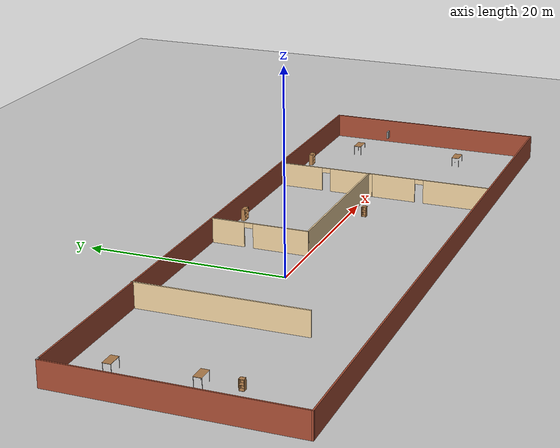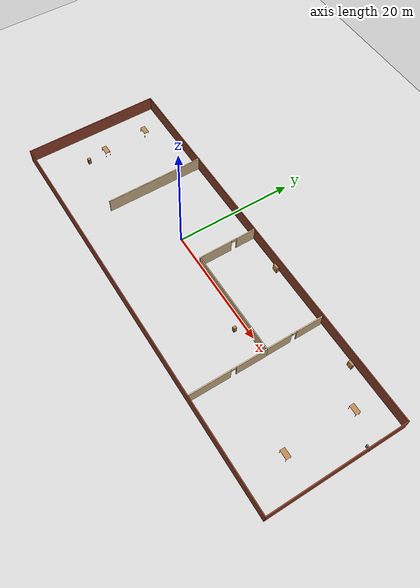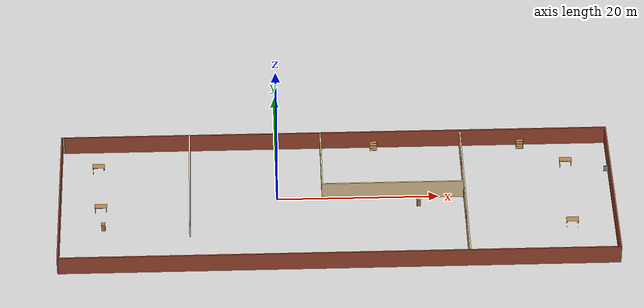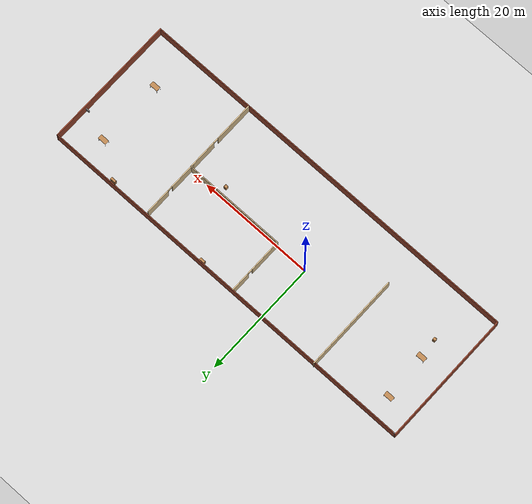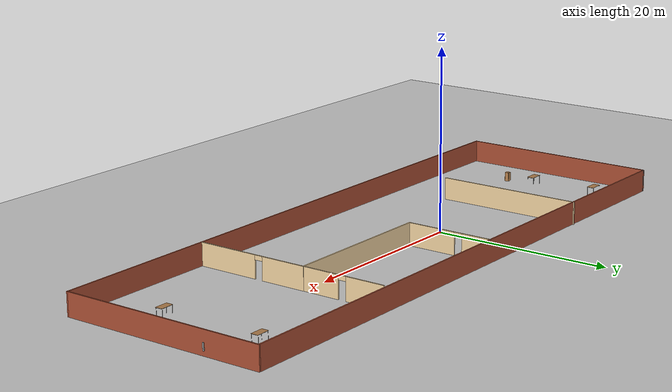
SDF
<sdf version="1.7">
 <world name="default">
  <light name="sun" type="directional">
   <pose>0 0 10 0 -0 0</pose>
   <diffuse>0.8 0.8 0.8 1</diffuse>
   <specular>0.2 0.2 0.2 1</specular>
   <attenuation>
    <range>1000</range>
    <constant>0.9</constant>
    <linear>0.01</linear>
    <quadratic>0.001</quadratic>
   </attenuation>
   <direction>-0.5 0.1 -0.9</direction>
   <spot><inner_angle>0</inner_angle><outer_angle>0</outer_angle><falloff>0</falloff></spot>
  </light>
  <model name="ground_plane">
   <static>1</static>
   <link name="link">
    <collision name="collision">
     <geometry><plane><normal>0 0 1</normal><size>100 100</size></plane></geometry>
     <surface>
      <contact><collide_bitmask>65535</collide_bitmask></contact>
      <friction><ode><mu>100</mu><mu2>50</mu2></ode></friction>
     </surface>
    </collision>
    <visual name="visual">
     <cast_shadows>0</cast_shadows>
     <geometry><plane><normal>0 0 1</normal><size>100 100</size></plane></geometry>
     <material>
      <script><uri>file://media/materials/scripts/gazebo.material</uri><name>Gazebo/Grey</name></script>
     </material>
    </visual>
   </link>
  </model>
  <gravity>0 0 -9.8</gravity>
  <magnetic_field>6e-06 2.3e-05 -4.2e-05</magnetic_field>
  <atmosphere type="adiabatic"/>
  <physics type="ode">
   <max_step_size>0.001</max_step_size>
   <real_time_factor>1</real_time_factor>
   <real_time_update_rate>1000</real_time_update_rate>
  </physics>
  <scene><ambient>0.4 0.4 0.4 1</ambient><background>0.7 0.7 0.7 1</background><shadows>1</shadows></scene>
  <spherical_coordinates>
   <surface_model>EARTH_WGS84</surface_model>
   <latitude_deg>0</latitude_deg>
   <longitude_deg>0</longitude_deg>
   <elevation>0</elevation>
   <heading_deg>0</heading_deg>
  </spherical_coordinates>
  <model name="model">
   <pose>7.34531 -1.52201 0 0 -0 0</pose>
   <link name="Wall_0">
    <collision name="Wall_0_Collision">
     <geometry><box><size>68.25 0.15 2.5</size></box></geometry>
     <pose>0 0 1.25 0 -0 0</pose>
    </collision>
    <visual name="Wall_0_Visual">
     <pose>0 0 1.25 0 -0 0</pose>
     <geometry><box><size>68.25 0.15 2.5</size></box></geometry>
     <material>
      <script><uri>file://media/materials/scripts/gazebo.material</uri><name>Gazebo/Bricks</name></script>
      <ambient>1 1 1 1</ambient>
     </material>
     <meta><layer>0</layer></meta>
    </visual>
    <pose>0.125 11.3695 0 0 -0 0</pose>
   </link>
   <link name="Wall_1">
    <collision name="Wall_1_Collision">
     <geometry><box><size>23 0.15 2.5</size></box></geometry>
     <pose>0 0 1.25 0 -0 0</pose>
    </collision>
    <visual name="Wall_1_Visual">
     <pose>0 0 1.25 0 -0 0</pose>
     <geometry><box><size>23 0.15 2.5</size></box></geometry>
     <material>
      <script><uri>file://media/materials/scripts/gazebo.material</uri><name>Gazebo/Bricks</name></script>
      <ambient>1 1 1 1</ambient>
     </material>
     <meta><layer>0</layer></meta>
    </visual>
    <pose>34.175 -0.05549 0 0 -0 -1.5708</pose>
   </link>
   <link name="Wall_14">
    <collision name="Wall_14_Collision">
     <geometry><box><size>17.75 0.15 2.5</size></box></geometry>
     <pose>0 0 1.25 0 -0 0</pose>
    </collision>
    <visual name="Wall_14_Visual">
     <pose>0 0 1.25 0 -0 0</pose>
     <geometry><box><size>17.75 0.15 2.5</size></box></geometry>
     <material>
      <script><uri>file://media/materials/scripts/gazebo.material</uri><name>Gazebo/Grey</name></script>
      <ambient>0.921569 0.807843 0.615686 1</ambient>
     </material>
     <meta><layer>0</layer></meta>
    </visual>
    <pose>7.05908 1.46402 0 0 -0 0</pose>
   </link>
   <link name="Wall_15">
    <pose>15.8591 -4.96098 0 0 -0 -1.5708</pose>
    <visual name="Wall_15_Visual_0">
     <pose>-3.92716 0 1.25 0 -0 0</pose>
     <geometry><box><size>5.14567 0.15 2.5</size></box></geometry>
     <material>
      <script><uri>file://media/materials/scripts/gazebo.material</uri><name>Gazebo/Grey</name></script>
      <ambient>0.921569 0.807843 0.615686 1</ambient>
     </material>
     <meta><layer>0</layer></meta>
    </visual>
    <collision name="Wall_15_Collision_0">
     <geometry><box><size>5.14567 0.15 2.5</size></box></geometry>
     <pose>-3.92716 0 1.25 0 -0 0</pose>
    </collision>
    <visual name="Wall_15_Visual_1">
     <pose>3.02284 0 1.25 0 -0 0</pose>
     <geometry><box><size>6.95432 0.15 2.5</size></box></geometry>
     <material>
      <script><uri>file://media/materials/scripts/gazebo.material</uri><name>Gazebo/Grey</name></script>
      <ambient>0.921569 0.807843 0.615686 1</ambient>
     </material>
     <meta><layer>0</layer></meta>
    </visual>
    <collision name="Wall_15_Collision_1">
     <geometry><box><size>6.95432 0.15 2.5</size></box></geometry>
     <pose>3.02284 0 1.25 0 -0 0</pose>
    </collision>
    <visual name="Wall_15_Visual_2">
     <pose>-0.904325 0 2.25 0 -0 0</pose>
     <geometry><box><size>0.9 0.15 0.5</size></box></geometry>
     <material>
      <script><uri>file://media/materials/scripts/gazebo.material</uri><name>Gazebo/Grey</name></script>
      <ambient>0.921569 0.807843 0.615686 1</ambient>
     </material>
     <meta><layer>0</layer></meta>
    </visual>
    <collision name="Wall_15_Collision_2">
     <geometry><box><size>0.9 0.15 0.5</size></box></geometry>
     <pose>-0.904325 0 2.25 0 -0 0</pose>
    </collision>
   </link>
   <link name="Wall_2">
    <collision name="Wall_2_Collision">
     <geometry><box><size>68.5 0.15 2.5</size></box></geometry>
     <pose>0 0 1.25 0 -0 0</pose>
    </collision>
    <visual name="Wall_2_Visual">
     <pose>0 0 1.25 0 -0 0</pose>
     <geometry><box><size>68.5 0.15 2.5</size></box></geometry>
     <material>
      <script><uri>file://media/materials/scripts/gazebo.material</uri><name>Gazebo/Bricks</name></script>
      <ambient>1 1 1 1</ambient>
     </material>
     <meta><layer>0</layer></meta>
    </visual>
    <pose>0 -11.4805 0 0 -0 3.14159</pose>
   </link>
   <link name="Wall_20">
    <pose>15.8297 6.03071 0 0 -0 1.5708</pose>
    <visual name="Wall_20_Visual_0">
     <pose>-2.66704 0 1.25 0 -0 0</pose>
     <geometry><box><size>4.66592 0.15 2.5</size></box></geometry>
     <material>
      <script><uri>file://media/materials/scripts/gazebo.material</uri><name>Gazebo/Grey</name></script>
      <ambient>0.921569 0.807843 0.615686 1</ambient>
     </material>
     <meta><layer>0</layer></meta>
    </visual>
    <collision name="Wall_20_Collision_0">
     <geometry><box><size>4.66592 0.15 2.5</size></box></geometry>
     <pose>-2.66704 0 1.25 0 -0 0</pose>
    </collision>
    <visual name="Wall_20_Visual_1">
     <pose>2.78296 0 1.25 0 -0 0</pose>
     <geometry><box><size>4.43408 0.15 2.5</size></box></geometry>
     <material>
      <script><uri>file://media/materials/scripts/gazebo.material</uri><name>Gazebo/Grey</name></script>
      <ambient>0.921569 0.807843 0.615686 1</ambient>
     </material>
     <meta><layer>0</layer></meta>
    </visual>
    <collision name="Wall_20_Collision_1">
     <geometry><box><size>4.43408 0.15 2.5</size></box></geometry>
     <pose>2.78296 0 1.25 0 -0 0</pose>
    </collision>
    <visual name="Wall_20_Visual_2">
     <pose>0.115923 0 2.25 0 -0 0</pose>
     <geometry><box><size>0.9 0.15 0.5</size></box></geometry>
     <material>
      <script><uri>file://media/materials/scripts/gazebo.material</uri><name>Gazebo/Grey</name></script>
      <ambient>0.921569 0.807843 0.615686 1</ambient>
     </material>
     <meta><layer>0</layer></meta>
    </visual>
    <collision name="Wall_20_Collision_2">
     <geometry><box><size>0.9 0.15 0.5</size></box></geometry>
     <pose>0.115923 0 2.25 0 -0 0</pose>
    </collision>
   </link>
   <link name="Wall_3">
    <collision name="Wall_3_Collision">
     <geometry><box><size>23 0.15 2.5</size></box></geometry>
     <pose>0 0 1.25 0 -0 0</pose>
    </collision>
    <visual name="Wall_3_Visual">
     <pose>0 0 1.25 0 -0 0</pose>
     <geometry><box><size>23 0.15 2.5</size></box></geometry>
     <material>
      <script><uri>file://media/materials/scripts/gazebo.material</uri><name>Gazebo/Bricks</name></script>
      <ambient>1 1 1 1</ambient>
     </material>
     <meta><layer>0</layer></meta>
    </visual>
    <pose>-34.175 -0.05549 0 0 -0 1.5708</pose>
   </link>
   <link name="Wall_4">
    <collision name="Wall_4_Collision">
     <geometry><box><size>0.4 0.15 2.5</size></box></geometry>
     <pose>0 0 1.25 0 -0 0</pose>
    </collision>
    <visual name="Wall_4_Visual">
     <pose>0 0 1.25 0 -0 0</pose>
     <geometry><box><size>0.4 0.15 2.5</size></box></geometry>
     <material>
      <script><uri>file://media/materials/scripts/gazebo.material</uri><name>Gazebo/Grey</name></script>
      <ambient>1 1 1 1</ambient>
     </material>
     <meta><layer>0</layer></meta>
    </visual>
    <pose>-34.05 11.3695 0 0 -0 0</pose>
   </link>
   <link name="Wall_6">
    <collision name="Wall_6_Collision">
     <geometry><box><size>16.75 0.15 2.5</size></box></geometry>
     <pose>0 0 1.25 0 -0 0</pose>
    </collision>
    <visual name="Wall_6_Visual">
     <pose>0 0 1.25 0 -0 0</pose>
     <geometry><box><size>16.75 0.15 2.5</size></box></geometry>
     <material>
      <script><uri>file://media/materials/scripts/gazebo.material</uri><name>Gazebo/Grey</name></script>
      <ambient>0.921569 0.807843 0.615686 1</ambient>
     </material>
     <meta><layer>0</layer></meta>
    </visual>
    <pose>-18.1659 3.18049 0 0 -0 -1.5708</pose>
   </link>
   <link name="Wall_8">
    <pose>-1.74091 6.38902 0 0 -0 -1.5708</pose>
    <visual name="Wall_8_Visual_0">
     <pose>-3.29213 0 1.25 0 -0 0</pose>
     <geometry><box><size>3.41574 0.15 2.5</size></box></geometry>
     <material>
      <script><uri>file://media/materials/scripts/gazebo.material</uri><name>Gazebo/Grey</name></script>
      <ambient>0.921569 0.807843 0.615686 1</ambient>
     </material>
     <meta><layer>0</layer></meta>
    </visual>
    <collision name="Wall_8_Collision_0">
     <geometry><box><size>3.41574 0.15 2.5</size></box></geometry>
     <pose>-3.29213 0 1.25 0 -0 0</pose>
    </collision>
    <visual name="Wall_8_Visual_1">
     <pose>2.15787 0 1.25 0 -0 0</pose>
     <geometry><box><size>5.68426 0.15 2.5</size></box></geometry>
     <material>
      <script><uri>file://media/materials/scripts/gazebo.material</uri><name>Gazebo/Grey</name></script>
      <ambient>0.921569 0.807843 0.615686 1</ambient>
     </material>
     <meta><layer>0</layer></meta>
    </visual>
    <collision name="Wall_8_Collision_1">
     <geometry><box><size>5.68426 0.15 2.5</size></box></geometry>
     <pose>2.15787 0 1.25 0 -0 0</pose>
    </collision>
    <visual name="Wall_8_Visual_2">
     <pose>-1.13426 0 2.25 0 -0 0</pose>
     <geometry><box><size>0.9 0.15 0.5</size></box></geometry>
     <material>
      <script><uri>file://media/materials/scripts/gazebo.material</uri><name>Gazebo/Grey</name></script>
      <ambient>0.921569 0.807843 0.615686 1</ambient>
     </material>
     <meta><layer>0</layer></meta>
    </visual>
    <collision name="Wall_8_Collision_2">
     <geometry><box><size>0.9 0.15 0.5</size></box></geometry>
     <pose>-1.13426 0 2.25 0 -0 0</pose>
    </collision>
   </link>
   <link name="Window_1">
    <collision name="Window_1_Collision">
     <geometry><box><size>0.8 0.17 0.8</size></box></geometry>
     <pose>0 0 0.4 0 -0 0</pose>
    </collision>
    <visual name="Window_1_Visual">
     <pose>0 0 0.4 0 -0 0</pose>
     <geometry><box><size>0.8 0.17 0.8</size></box></geometry>
     <material>
      <script><uri>file://media/materials/scripts/gazebo.material</uri><name>Gazebo/Grey</name></script>
     </material>
    </visual>
    <pose>33.9219 5.17612 0.5 0 -0 0</pose>
   </link>
   <static>1</static>
  </model>
  <model name="table">
   <static>1</static>
   <link name="link">
    <collision name="surface">
     <pose>0 0 1 0 -0 0</pose>
     <geometry><box><size>1.5 0.8 0.03</size></box></geometry>
     <surface><friction><ode><mu>0.6</mu><mu2>0.6</mu2></ode></friction></surface>
    </collision>
    <visual name="visual1">
     <pose>0 0 1 0 -0 0</pose>
     <geometry><box><size>1.5 0.8 0.03</size></box></geometry>
     <material>
      <script><uri>file://media/materials/scripts/gazebo.material</uri><name>Gazebo/Wood</name></script>
     </material>
    </visual>
    <collision name="front_left_leg">
     <pose>0.68 0.38 0.5 0 -0 0</pose>
     <geometry><cylinder><radius>0.02</radius><length>1</length></cylinder></geometry>
    </collision>
    <visual name="front_left_leg">
     <pose>0.68 0.38 0.5 0 -0 0</pose>
     <geometry><cylinder><radius>0.02</radius><length>1</length></cylinder></geometry>
     <material>
      <script><uri>file://media/materials/scripts/gazebo.material</uri><name>Gazebo/Grey</name></script>
     </material>
    </visual>
    <collision name="front_right_leg">
     <pose>0.68 -0.38 0.5 0 -0 0</pose>
     <geometry><cylinder><radius>0.02</radius><length>1</length></cylinder></geometry>
    </collision>
    <visual name="front_right_leg">
     <pose>0.68 -0.38 0.5 0 -0 0</pose>
     <geometry><cylinder><radius>0.02</radius><length>1</length></cylinder></geometry>
     <material>
      <script><uri>file://media/materials/scripts/gazebo.material</uri><name>Gazebo/Grey</name></script>
     </material>
    </visual>
    <collision name="back_right_leg">
     <pose>-0.68 -0.38 0.5 0 -0 0</pose>
     <geometry><cylinder><radius>0.02</radius><length>1</length></cylinder></geometry>
    </collision>
    <visual name="back_right_leg">
     <pose>-0.68 -0.38 0.5 0 -0 0</pose>
     <geometry><cylinder><radius>0.02</radius><length>1</length></cylinder></geometry>
     <material>
      <script><uri>file://media/materials/scripts/gazebo.material</uri><name>Gazebo/Grey</name></script>
     </material>
    </visual>
    <collision name="back_left_leg">
     <pose>-0.68 0.38 0.5 0 -0 0</pose>
     <geometry><cylinder><radius>0.02</radius><length>1</length></cylinder></geometry>
    </collision>
    <visual name="back_left_leg">
     <pose>-0.68 0.38 0.5 0 -0 0</pose>
     <geometry><cylinder><radius>0.02</radius><length>1</length></cylinder></geometry>
     <material>
      <script><uri>file://media/materials/scripts/gazebo.material</uri><name>Gazebo/Grey</name></script>
     </material>
    </visual>
   </link>
   <pose>-22.2207 5.97345 0 0 -0 0</pose>
  </model>
  <model name="table_0">
   <static>1</static>
   <link name="link">
    <collision name="surface">
     <pose>0 0 1 0 -0 0</pose>
     <geometry><box><size>1.5 0.8 0.03</size></box></geometry>
     <surface><friction><ode><mu>0.6</mu><mu2>0.6</mu2></ode></friction></surface>
    </collision>
    <visual name="visual1">
     <pose>0 0 1 0 -0 0</pose>
     <geometry><box><size>1.5 0.8 0.03</size></box></geometry>
     <material>
      <script><uri>file://media/materials/scripts/gazebo.material</uri><name>Gazebo/Wood</name></script>
     </material>
    </visual>
    <collision name="front_left_leg">
     <pose>0.68 0.38 0.5 0 -0 0</pose>
     <geometry><cylinder><radius>0.02</radius><length>1</length></cylinder></geometry>
    </collision>
    <visual name="front_left_leg">
     <pose>0.68 0.38 0.5 0 -0 0</pose>
     <geometry><cylinder><radius>0.02</radius><length>1</length></cylinder></geometry>
     <material>
      <script><uri>file://media/materials/scripts/gazebo.material</uri><name>Gazebo/Grey</name></script>
     </material>
    </visual>
    <collision name="front_right_leg">
     <pose>0.68 -0.38 0.5 0 -0 0</pose>
     <geometry><cylinder><radius>0.02</radius><length>1</length></cylinder></geometry>
    </collision>
    <visual name="front_right_leg">
     <pose>0.68 -0.38 0.5 0 -0 0</pose>
     <geometry><cylinder><radius>0.02</radius><length>1</length></cylinder></geometry>
     <material>
      <script><uri>file://media/materials/scripts/gazebo.material</uri><name>Gazebo/Grey</name></script>
     </material>
    </visual>
    <collision name="back_right_leg">
     <pose>-0.68 -0.38 0.5 0 -0 0</pose>
     <geometry><cylinder><radius>0.02</radius><length>1</length></cylinder></geometry>
    </collision>
    <visual name="back_right_leg">
     <pose>-0.68 -0.38 0.5 0 -0 0</pose>
     <geometry><cylinder><radius>0.02</radius><length>1</length></cylinder></geometry>
     <material>
      <script><uri>file://media/materials/scripts/gazebo.material</uri><name>Gazebo/Grey</name></script>
     </material>
    </visual>
    <collision name="back_left_leg">
     <pose>-0.68 0.38 0.5 0 -0 0</pose>
     <geometry><cylinder><radius>0.02</radius><length>1</length></cylinder></geometry>
    </collision>
    <visual name="back_left_leg">
     <pose>-0.68 0.38 0.5 0 -0 0</pose>
     <geometry><cylinder><radius>0.02</radius><length>1</length></cylinder></geometry>
     <material>
      <script><uri>file://media/materials/scripts/gazebo.material</uri><name>Gazebo/Grey</name></script>
     </material>
    </visual>
   </link>
   <pose>-21.8013 -1.74204 0 0 -0 0</pose>
  </model>
  <model name="table_1">
   <static>1</static>
   <link name="link">
    <collision name="surface">
     <pose>0 0 1 0 -0 0</pose>
     <geometry><box><size>1.5 0.8 0.03</size></box></geometry>
     <surface><friction><ode><mu>0.6</mu><mu2>0.6</mu2></ode></friction></surface>
    </collision>
    <visual name="visual1">
     <pose>0 0 1 0 -0 0</pose>
     <geometry><box><size>1.5 0.8 0.03</size></box></geometry>
     <material>
      <script><uri>file://media/materials/scripts/gazebo.material</uri><name>Gazebo/Wood</name></script>
     </material>
    </visual>
    <collision name="front_left_leg">
     <pose>0.68 0.38 0.5 0 -0 0</pose>
     <geometry><cylinder><radius>0.02</radius><length>1</length></cylinder></geometry>
    </collision>
    <visual name="front_left_leg">
     <pose>0.68 0.38 0.5 0 -0 0</pose>
     <geometry><cylinder><radius>0.02</radius><length>1</length></cylinder></geometry>
     <material>
      <script><uri>file://media/materials/scripts/gazebo.material</uri><name>Gazebo/Grey</name></script>
     </material>
    </visual>
    <collision name="front_right_leg">
     <pose>0.68 -0.38 0.5 0 -0 0</pose>
     <geometry><cylinder><radius>0.02</radius><length>1</length></cylinder></geometry>
    </collision>
    <visual name="front_right_leg">
     <pose>0.68 -0.38 0.5 0 -0 0</pose>
     <geometry><cylinder><radius>0.02</radius><length>1</length></cylinder></geometry>
     <material>
      <script><uri>file://media/materials/scripts/gazebo.material</uri><name>Gazebo/Grey</name></script>
     </material>
    </visual>
    <collision name="back_right_leg">
     <pose>-0.68 -0.38 0.5 0 -0 0</pose>
     <geometry><cylinder><radius>0.02</radius><length>1</length></cylinder></geometry>
    </collision>
    <visual name="back_right_leg">
     <pose>-0.68 -0.38 0.5 0 -0 0</pose>
     <geometry><cylinder><radius>0.02</radius><length>1</length></cylinder></geometry>
     <material>
      <script><uri>file://media/materials/scripts/gazebo.material</uri><name>Gazebo/Grey</name></script>
     </material>
    </visual>
    <collision name="back_left_leg">
     <pose>-0.68 0.38 0.5 0 -0 0</pose>
     <geometry><cylinder><radius>0.02</radius><length>1</length></cylinder></geometry>
    </collision>
    <visual name="back_left_leg">
     <pose>-0.68 0.38 0.5 0 -0 0</pose>
     <geometry><cylinder><radius>0.02</radius><length>1</length></cylinder></geometry>
     <material>
      <script><uri>file://media/materials/scripts/gazebo.material</uri><name>Gazebo/Grey</name></script>
     </material>
    </visual>
   </link>
   <pose>36.2172 5.45251 0 0 -0 0</pose>
  </model>
  <model name="table_2">
   <static>1</static>
   <link name="link">
    <collision name="surface">
     <pose>0 0 1 0 -0 0</pose>
     <geometry><box><size>1.5 0.8 0.03</size></box></geometry>
     <surface><friction><ode><mu>0.6</mu><mu2>0.6</mu2></ode></friction></surface>
    </collision>
    <visual name="visual1">
     <pose>0 0 1 0 -0 0</pose>
     <geometry><box><size>1.5 0.8 0.03</size></box></geometry>
     <material>
      <script><uri>file://media/materials/scripts/gazebo.material</uri><name>Gazebo/Wood</name></script>
     </material>
    </visual>
    <collision name="front_left_leg">
     <pose>0.68 0.38 0.5 0 -0 0</pose>
     <geometry><cylinder><radius>0.02</radius><length>1</length></cylinder></geometry>
    </collision>
    <visual name="front_left_leg">
     <pose>0.68 0.38 0.5 0 -0 0</pose>
     <geometry><cylinder><radius>0.02</radius><length>1</length></cylinder></geometry>
     <material>
      <script><uri>file://media/materials/scripts/gazebo.material</uri><name>Gazebo/Grey</name></script>
     </material>
    </visual>
    <collision name="front_right_leg">
     <pose>0.68 -0.38 0.5 0 -0 0</pose>
     <geometry><cylinder><radius>0.02</radius><length>1</length></cylinder></geometry>
    </collision>
    <visual name="front_right_leg">
     <pose>0.68 -0.38 0.5 0 -0 0</pose>
     <geometry><cylinder><radius>0.02</radius><length>1</length></cylinder></geometry>
     <material>
      <script><uri>file://media/materials/scripts/gazebo.material</uri><name>Gazebo/Grey</name></script>
     </material>
    </visual>
    <collision name="back_right_leg">
     <pose>-0.68 -0.38 0.5 0 -0 0</pose>
     <geometry><cylinder><radius>0.02</radius><length>1</length></cylinder></geometry>
    </collision>
    <visual name="back_right_leg">
     <pose>-0.68 -0.38 0.5 0 -0 0</pose>
     <geometry><cylinder><radius>0.02</radius><length>1</length></cylinder></geometry>
     <material>
      <script><uri>file://media/materials/scripts/gazebo.material</uri><name>Gazebo/Grey</name></script>
     </material>
    </visual>
    <collision name="back_left_leg">
     <pose>-0.68 0.38 0.5 0 -0 0</pose>
     <geometry><cylinder><radius>0.02</radius><length>1</length></cylinder></geometry>
    </collision>
    <visual name="back_left_leg">
     <pose>-0.68 0.38 0.5 0 -0 0</pose>
     <geometry><cylinder><radius>0.02</radius><length>1</length></cylinder></geometry>
     <material>
      <script><uri>file://media/materials/scripts/gazebo.material</uri><name>Gazebo/Grey</name></script>
     </material>
    </visual>
   </link>
   <pose>36.2003 -6.01355 0 0 -0 0</pose>
  </model>
  <model name="bookshelf">
   <static>1</static>
   <link name="link">
    <inertial><mass>1</mass></inertial>
    <collision name="back">
     <pose>0 0.005 0.6 0 -0 0</pose>
     <geometry><box><size>0.9 0.01 1.2</size></box></geometry>
    </collision>
    <visual name="visual1">
     <pose>0 0.005 0.6 0 -0 0</pose>
     <geometry><box><size>0.9 0.01 1.2</size></box></geometry>
     <material>
      <script><uri>file://media/materials/scripts/gazebo.material</uri><name>Gazebo/Wood</name></script>
     </material>
    </visual>
    <collision name="left_side">
     <pose>0.45 -0.195 0.6 0 -0 0</pose>
     <geometry><box><size>0.02 0.4 1.2</size></box></geometry>
    </collision>
    <visual name="visual2">
     <pose>0.45 -0.195 0.6 0 -0 0</pose>
     <geometry><box><size>0.02 0.4 1.2</size></box></geometry>
     <material>
      <script><uri>file://media/materials/scripts/gazebo.material</uri><name>Gazebo/Wood</name></script>
     </material>
    </visual>
    <collision name="right_side">
     <pose>-0.45 -0.195 0.6 0 -0 0</pose>
     <geometry><box><size>0.02 0.4 1.2</size></box></geometry>
    </collision>
    <visual name="visual3">
     <pose>-0.45 -0.195 0.6 0 -0 0</pose>
     <geometry><box><size>0.02 0.4 1.2</size></box></geometry>
     <material>
      <script><uri>file://media/materials/scripts/gazebo.material</uri><name>Gazebo/Wood</name></script>
     </material>
    </visual>
    <collision name="bottom">
     <pose>0 -0.195 0.03 0 -0 0</pose>
     <geometry><box><size>0.88 0.4 0.06</size></box></geometry>
    </collision>
    <visual name="visual4">
     <pose>0 -0.195 0.03 0 -0 0</pose>
     <geometry><box><size>0.88 0.4 0.06</size></box></geometry>
     <material>
      <script><uri>file://media/materials/scripts/gazebo.material</uri><name>Gazebo/Wood</name></script>
     </material>
    </visual>
    <collision name="top">
     <pose>0 -0.195 1.19 0 -0 0</pose>
     <geometry><box><size>0.88 0.4 0.02</size></box></geometry>
    </collision>
    <visual name="visual5">
     <pose>0 -0.195 1.19 0 -0 0</pose>
     <geometry><box><size>0.88 0.4 0.02</size></box></geometry>
     <material>
      <script><uri>file://media/materials/scripts/gazebo.material</uri><name>Gazebo/Wood</name></script>
     </material>
    </visual>
    <collision name="low_shelf">
     <pose>0 -0.195 0.43 0 -0 0</pose>
     <geometry><box><size>0.88 0.4 0.02</size></box></geometry>
    </collision>
    <visual name="visual6">
     <pose>0 -0.195 0.43 0 -0 0</pose>
     <geometry><box><size>0.88 0.4 0.02</size></box></geometry>
     <material>
      <script><uri>file://media/materials/scripts/gazebo.material</uri><name>Gazebo/Wood</name></script>
     </material>
    </visual>
    <collision name="high_shelf">
     <pose>0 -0.195 0.8 0 -0 0</pose>
     <geometry><box><size>0.88 0.4 0.02</size></box></geometry>
    </collision>
    <visual name="visual7">
     <pose>0 -0.195 0.8 0 -0 0</pose>
     <geometry><box><size>0.88 0.4 0.02</size></box></geometry>
     <material>
      <script><uri>file://media/materials/scripts/gazebo.material</uri><name>Gazebo/Wood</name></script>
     </material>
    </visual>
   </link>
   <pose>30.7128 9.31954 0 0 -0 0</pose>
  </model>
  <model name="bookshelf_0">
   <static>1</static>
   <link name="link">
    <inertial><mass>1</mass></inertial>
    <collision name="back">
     <pose>0 0.005 0.6 0 -0 0</pose>
     <geometry><box><size>0.9 0.01 1.2</size></box></geometry>
    </collision>
    <visual name="visual1">
     <pose>0 0.005 0.6 0 -0 0</pose>
     <geometry><box><size>0.9 0.01 1.2</size></box></geometry>
     <material>
      <script><uri>file://media/materials/scripts/gazebo.material</uri><name>Gazebo/Wood</name></script>
     </material>
    </visual>
    <collision name="left_side">
     <pose>0.45 -0.195 0.6 0 -0 0</pose>
     <geometry><box><size>0.02 0.4 1.2</size></box></geometry>
    </collision>
    <visual name="visual2">
     <pose>0.45 -0.195 0.6 0 -0 0</pose>
     <geometry><box><size>0.02 0.4 1.2</size></box></geometry>
     <material>
      <script><uri>file://media/materials/scripts/gazebo.material</uri><name>Gazebo/Wood</name></script>
     </material>
    </visual>
    <collision name="right_side">
     <pose>-0.45 -0.195 0.6 0 -0 0</pose>
     <geometry><box><size>0.02 0.4 1.2</size></box></geometry>
    </collision>
    <visual name="visual3">
     <pose>-0.45 -0.195 0.6 0 -0 0</pose>
     <geometry><box><size>0.02 0.4 1.2</size></box></geometry>
     <material>
      <script><uri>file://media/materials/scripts/gazebo.material</uri><name>Gazebo/Wood</name></script>
     </material>
    </visual>
    <collision name="bottom">
     <pose>0 -0.195 0.03 0 -0 0</pose>
     <geometry><box><size>0.88 0.4 0.06</size></box></geometry>
    </collision>
    <visual name="visual4">
     <pose>0 -0.195 0.03 0 -0 0</pose>
     <geometry><box><size>0.88 0.4 0.06</size></box></geometry>
     <material>
      <script><uri>file://media/materials/scripts/gazebo.material</uri><name>Gazebo/Wood</name></script>
     </material>
    </visual>
    <collision name="top">
     <pose>0 -0.195 1.19 0 -0 0</pose>
     <geometry><box><size>0.88 0.4 0.02</size></box></geometry>
    </collision>
    <visual name="visual5">
     <pose>0 -0.195 1.19 0 -0 0</pose>
     <geometry><box><size>0.88 0.4 0.02</size></box></geometry>
     <material>
      <script><uri>file://media/materials/scripts/gazebo.material</uri><name>Gazebo/Wood</name></script>
     </material>
    </visual>
    <collision name="low_shelf">
     <pose>0 -0.195 0.43 0 -0 0</pose>
     <geometry><box><size>0.88 0.4 0.02</size></box></geometry>
    </collision>
    <visual name="visual6">
     <pose>0 -0.195 0.43 0 -0 0</pose>
     <geometry><box><size>0.88 0.4 0.02</size></box></geometry>
     <material>
      <script><uri>file://media/materials/scripts/gazebo.material</uri><name>Gazebo/Wood</name></script>
     </material>
    </visual>
    <collision name="high_shelf">
     <pose>0 -0.195 0.8 0 -0 0</pose>
     <geometry><box><size>0.88 0.4 0.02</size></box></geometry>
    </collision>
    <visual name="visual7">
     <pose>0 -0.195 0.8 0 -0 0</pose>
     <geometry><box><size>0.88 0.4 0.02</size></box></geometry>
     <material>
      <script><uri>file://media/materials/scripts/gazebo.material</uri><name>Gazebo/Wood</name></script>
     </material>
    </visual>
   </link>
   <pose>12.2763 9.5106 0 0 -0 0</pose>
  </model>
  <model name="cabinet">
   <static>1</static>
   <link name="cabinet_bottom_plate">
    <inertial>
     <pose>0 0 -1 0 -0 0</pose>
     <inertia><ixx>2.05</ixx><ixy>0</ixy><ixz>0</ixz><iyy>2.05</iyy><iyz>0</iyz><izz>2.05</izz></inertia>
     <mass>25</mass>
    </inertial>
    <collision name="cabinet_bottom_plate_geom">
     <pose>0 0 0.01 0 -0 0</pose>
     <geometry><box><size>0.45 0.45 0.02</size></box></geometry>
    </collision>
    <visual name="cabinet_bottom_plate_geom_visual">
     <pose>0 0 0.01 0 -0 0</pose>
     <geometry><box><size>0.45 0.45 0.02</size></box></geometry>
     <material>
      <script><uri>file://media/materials/scripts/gazebo.material</uri><name>Gazebo/Wood</name></script>
     </material>
    </visual>
    <collision name="cabinet_bottom_plate_geom_cabinet_back_plate">
     <pose>0.235 0 0.51 0 -0 0</pose>
     <geometry><box><size>0.02 0.45 1.02</size></box></geometry>
    </collision>
    <visual name="cabinet_bottom_plate_geom_cabinet_back_plate_visual">
     <pose>0.235 0 0.51 0 -0 0</pose>
     <geometry><box><size>0.02 0.45 1.02</size></box></geometry>
     <material>
      <script><uri>file://media/materials/scripts/gazebo.material</uri><name>Gazebo/Wood</name></script>
     </material>
    </visual>
    <collision name="cabinet_bottom_plate_geom_cabinet_left_plate">
     <pose>0 0.235 0.51 0 -0 0</pose>
     <geometry><box><size>0.45 0.02 1.02</size></box></geometry>
    </collision>
    <visual name="cabinet_bottom_plate_geom_cabinet_left_plate_visual">
     <pose>0 0.235 0.51 0 -0 0</pose>
     <geometry><box><size>0.45 0.02 1.02</size></box></geometry>
     <material>
      <script><uri>file://media/materials/scripts/gazebo.material</uri><name>Gazebo/Wood</name></script>
     </material>
    </visual>
    <collision name="cabinet_bottom_plate_geom_cabinet_middle_plate">
     <pose>0 0 0.51 0 -0 0</pose>
     <geometry><box><size>0.45 0.45 0.02</size></box></geometry>
    </collision>
    <visual name="cabinet_bottom_plate_geom_cabinet_middle_plate_visual">
     <pose>0 0 0.51 0 -0 0</pose>
     <geometry><box><size>0.45 0.45 0.02</size></box></geometry>
     <material>
      <script><uri>file://media/materials/scripts/gazebo.material</uri><name>Gazebo/Wood</name></script>
     </material>
    </visual>
    <collision name="cabinet_bottom_plate_geom_cabinet_right_plate">
     <pose>0 -0.235 0.51 0 -0 0</pose>
     <geometry><box><size>0.45 0.02 1.02</size></box></geometry>
    </collision>
    <visual name="cabinet_bottom_plate_geom_cabinet_right_plate_visual">
     <pose>0 -0.235 0.51 0 -0 0</pose>
     <geometry><box><size>0.45 0.02 1.02</size></box></geometry>
     <material>
      <script><uri>file://media/materials/scripts/gazebo.material</uri><name>Gazebo/Wood</name></script>
     </material>
    </visual>
    <collision name="cabinet_bottom_plate_geom_cabinet_top_plate">
     <pose>0 0 1.01 0 -0 0</pose>
     <geometry><box><size>0.45 0.45 0.02</size></box></geometry>
    </collision>
    <visual name="cabinet_bottom_plate_geom_cabinet_top_plate_visual">
     <pose>0 0 1.01 0 -0 0</pose>
     <geometry><box><size>0.45 0.45 0.02</size></box></geometry>
     <material>
      <script><uri>file://media/materials/scripts/gazebo.material</uri><name>Gazebo/Wood</name></script>
     </material>
    </visual>
   </link>
   <pose>-21.4615 -5.0824 0 0 -0 0</pose>
  </model>
  <model name="cabinet_0">
   <static>1</static>
   <link name="cabinet_bottom_plate">
    <inertial>
     <pose>0 0 -1 0 -0 0</pose>
     <inertia><ixx>2.05</ixx><ixy>0</ixy><ixz>0</ixz><iyy>2.05</iyy><iyz>0</iyz><izz>2.05</izz></inertia>
     <mass>25</mass>
    </inertial>
    <collision name="cabinet_bottom_plate_geom">
     <pose>0 0 0.01 0 -0 0</pose>
     <geometry><box><size>0.45 0.45 0.02</size></box></geometry>
    </collision>
    <visual name="cabinet_bottom_plate_geom_visual">
     <pose>0 0 0.01 0 -0 0</pose>
     <geometry><box><size>0.45 0.45 0.02</size></box></geometry>
     <material>
      <script><uri>file://media/materials/scripts/gazebo.material</uri><name>Gazebo/Wood</name></script>
     </material>
    </visual>
    <collision name="cabinet_bottom_plate_geom_cabinet_back_plate">
     <pose>0.235 0 0.51 0 -0 0</pose>
     <geometry><box><size>0.02 0.45 1.02</size></box></geometry>
    </collision>
    <visual name="cabinet_bottom_plate_geom_cabinet_back_plate_visual">
     <pose>0.235 0 0.51 0 -0 0</pose>
     <geometry><box><size>0.02 0.45 1.02</size></box></geometry>
     <material>
      <script><uri>file://media/materials/scripts/gazebo.material</uri><name>Gazebo/Wood</name></script>
     </material>
    </visual>
    <collision name="cabinet_bottom_plate_geom_cabinet_left_plate">
     <pose>0 0.235 0.51 0 -0 0</pose>
     <geometry><box><size>0.45 0.02 1.02</size></box></geometry>
    </collision>
    <visual name="cabinet_bottom_plate_geom_cabinet_left_plate_visual">
     <pose>0 0.235 0.51 0 -0 0</pose>
     <geometry><box><size>0.45 0.02 1.02</size></box></geometry>
     <material>
      <script><uri>file://media/materials/scripts/gazebo.material</uri><name>Gazebo/Wood</name></script>
     </material>
    </visual>
    <collision name="cabinet_bottom_plate_geom_cabinet_middle_plate">
     <pose>0 0 0.51 0 -0 0</pose>
     <geometry><box><size>0.45 0.45 0.02</size></box></geometry>
    </collision>
    <visual name="cabinet_bottom_plate_geom_cabinet_middle_plate_visual">
     <pose>0 0 0.51 0 -0 0</pose>
     <geometry><box><size>0.45 0.45 0.02</size></box></geometry>
     <material>
      <script><uri>file://media/materials/scripts/gazebo.material</uri><name>Gazebo/Wood</name></script>
     </material>
    </visual>
    <collision name="cabinet_bottom_plate_geom_cabinet_right_plate">
     <pose>0 -0.235 0.51 0 -0 0</pose>
     <geometry><box><size>0.45 0.02 1.02</size></box></geometry>
    </collision>
    <visual name="cabinet_bottom_plate_geom_cabinet_right_plate_visual">
     <pose>0 -0.235 0.51 0 -0 0</pose>
     <geometry><box><size>0.45 0.02 1.02</size></box></geometry>
     <material>
      <script><uri>file://media/materials/scripts/gazebo.material</uri><name>Gazebo/Wood</name></script>
     </material>
    </visual>
    <collision name="cabinet_bottom_plate_geom_cabinet_top_plate">
     <pose>0 0 1.01 0 -0 0</pose>
     <geometry><box><size>0.45 0.45 0.02</size></box></geometry>
    </collision>
    <visual name="cabinet_bottom_plate_geom_cabinet_top_plate_visual">
     <pose>0 0 1.01 0 -0 0</pose>
     <geometry><box><size>0.45 0.45 0.02</size></box></geometry>
     <material>
      <script><uri>file://media/materials/scripts/gazebo.material</uri><name>Gazebo/Wood</name></script>
     </material>
    </visual>
   </link>
   <pose>17.4819 -1.59597 0 0 -0 0</pose>
  </model>
 </world>
</sdf>
